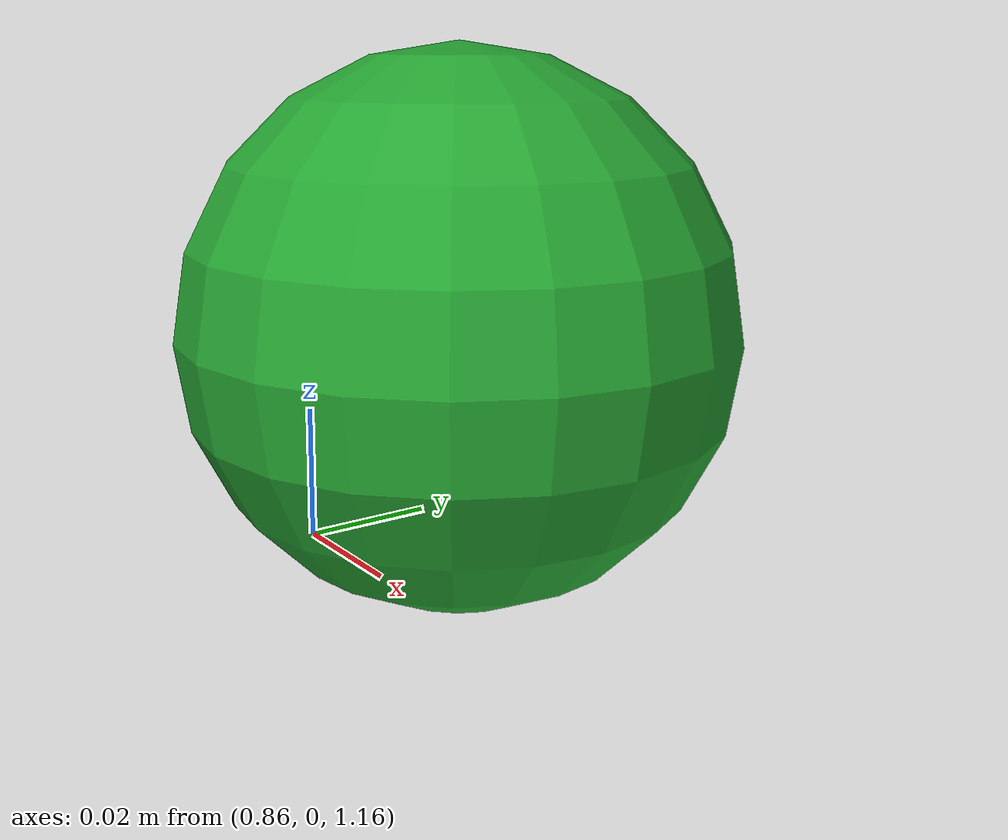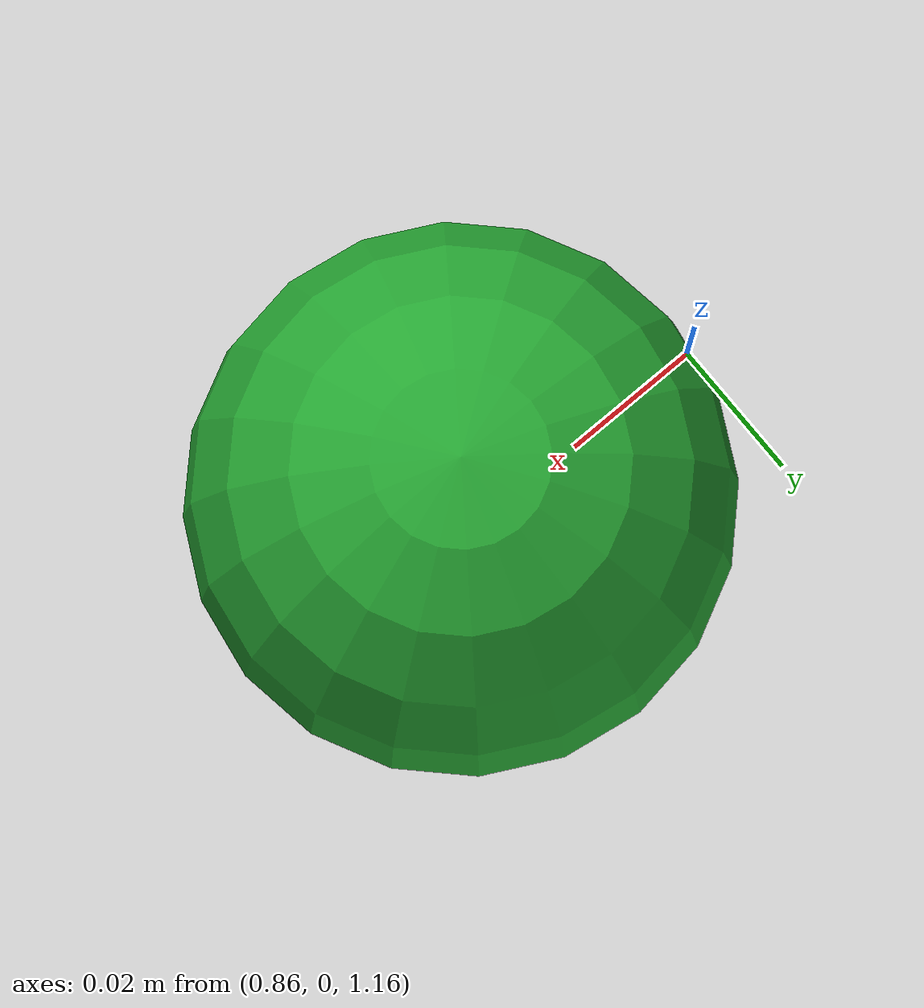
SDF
<?xml version="1.0" ?>
<sdf version="1.4">
  <world name="default">
    <physics type="ode">
      <gravity>0 0 -9.81</gravity>
      <ode>
        <solver>
          <type>quick</type>
          <iters>20</iters>
          <sor>1.0</sor>
        </solver>
        <constraints>
          <cfm>0.0</cfm>
          <erp>0.2</erp>
          <contact_max_correcting_vel>100.0</contact_max_correcting_vel>
          <contact_surface_layer>0.0</contact_surface_layer>
        </constraints>
      </ode>
      <real_time_update_rate>1000</real_time_update_rate>
      <max_step_size>0.001</max_step_size>
    </physics>
    <light type="directional" name="light1">
      <cast_shadows>true</cast_shadows>
      <pose>-2 0 4 0 0 0</pose>
      <diffuse>1.0 1.0 1.0 1</diffuse>
      <specular>0.1 0.1 0.1 1</specular>
      <attenuation>
        <range>20</range>
        <constant>0.9</constant>
        <linear>0.01</linear>
        <quadratic>0.001</quadratic>
      </attenuation>
      <direction>0.2 0.0 -1.0</direction>
    </light>
    <!-- A ground plane -->
    <include>
      <uri>model://ground_plane</uri>
    </include>
    <!-- A ball -->
    <include>
      <uri>model://green_ball</uri>
      <name>ball</name>
      <pose>0.9 0 1.2 0 0 0</pose>
    </include>
    <gui fullscreen="0">
      <camera name="user_camera">
        <pose>1.152670 -0.041479 3.496780 0.000000 1.123640 3.132190</pose>
        <view_controller>orbit</view_controller>
      </camera>
    </gui>
  </world>
</sdf>

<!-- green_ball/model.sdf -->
<sdf version='1.4'>
  <model name='table'>
      <link name='link'>
        <gravity>false</gravity>
        <collision name='surface'>
          <geometry>
            <sphere>
              <radius>0.035</radius>
            </sphere>
          </geometry>
        </collision>
        <visual name='visual'>
          <geometry>
            <sphere>
              <radius>0.035</radius>
            </sphere>
          </geometry>
          <material>
            <script>
              <uri>model://green_ball/materials/scripts/ball.material</uri>
              <name>Ball/Green</name>
            </script>
          </material>
        </visual>
      </link>
    </model>
</sdf>
